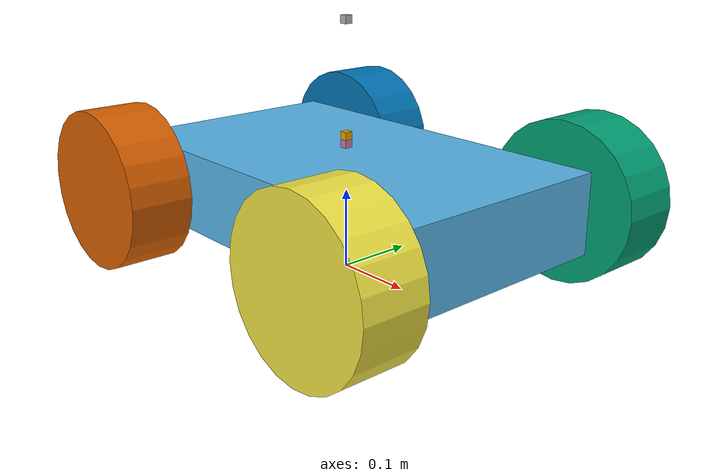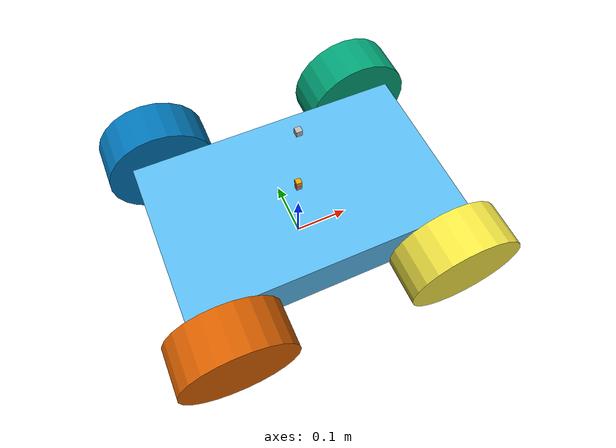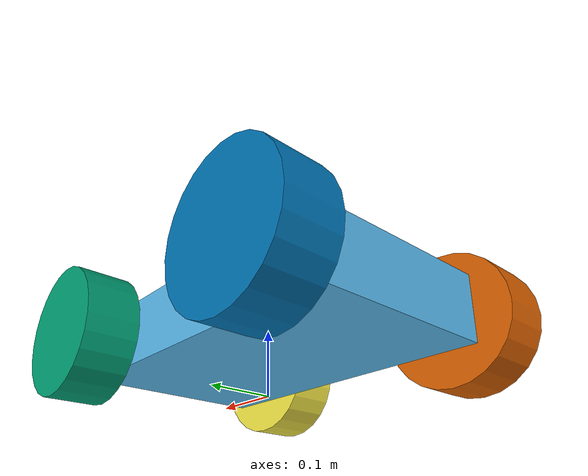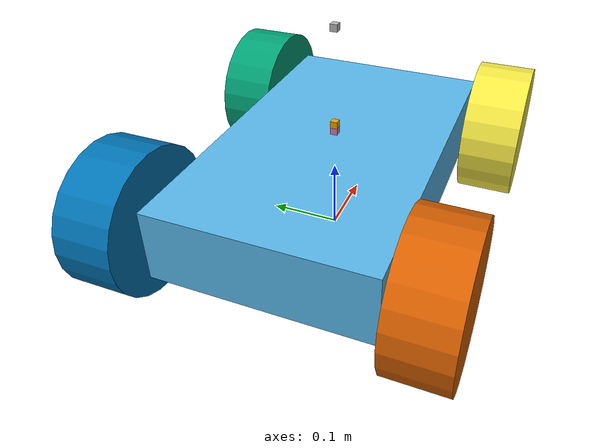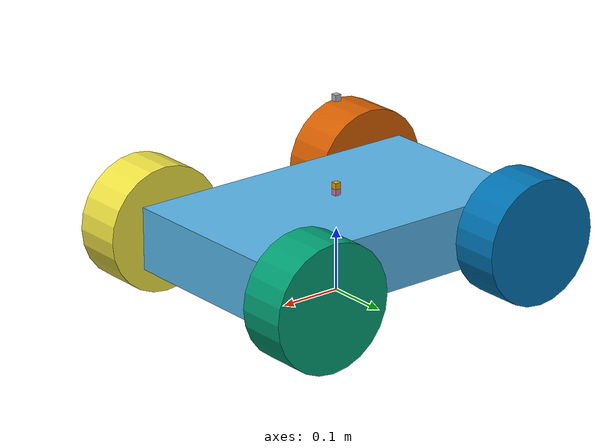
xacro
<?xml version="1.0"?>
<robot name="skid_steer" xmlns:xacro="http://www.ros.org/wiki/xacro">

  <xacro:property name="pi" value="3.14"/>

  <xacro:property name="chassis_length" value="0.5"/>
  <xacro:property name="chassis_width" value="0.3"/>
  <xacro:property name="chassis_height" value="0.1"/>

  <xacro:property name="wheel_radius" value="0.1"/>
  <xacro:property name="wheel_width" value="0.08"/>
  <xacro:property name="wheel_roll_angle" value="${pi/2}"/>

  <!--This link it is just to avoid a warning-->
  <link name="dummy_link"/>

  <!-- Base Link (Chassi) -->
  <link name="base_link">
    <visual>
      <origin xyz="0 0 0.1" rpy="0 0 0"/>
      <geometry>
        <box size="${chassis_length} ${chassis_width} ${chassis_height}"/>
      </geometry>
    </visual>

    <collision>
      <origin xyz="0 0 0.1" rpy="0 0 0"/>
      <geometry>
        <box size="${chassis_length} ${chassis_width} ${chassis_height}"/>
      </geometry>
    </collision>

    <inertial>
      <origin xyz="0 0 0.1" rpy="0 0 0"/>
      <mass value="5.0"/>
      <inertia ixx="0.083" ixy="0" ixz="0" iyy="0.083" iyz="0" izz="0.083"/>
    </inertial>
  </link>

  <!--This joint it is just to avoid a warning-->
  <joint name="fixed_joint" type="fixed">
    <parent link="dummy_link"/>
    <child link="base_link"/>
    <origin xyz="0 0 0" rpy="0 0 0"/>
  </joint>

  <link name="front_left_wheel">
    <visual>
      <origin xyz="0 0 0" rpy="${wheel_roll_angle} 0 0"/>
      <geometry>
        <cylinder radius="${wheel_radius}" length="${wheel_width}"/>
      </geometry>
    </visual>

    <collision>
      <origin xyz="0 0 0" rpy="${wheel_roll_angle} 0 0"/>
      <geometry>
        <cylinder radius="${wheel_radius}" length="${wheel_width}"/>
      </geometry>
      <friction>
        <ode>
          <mu>10.0</mu>
          <mu2>10.0</mu2>
          <slip1>0.0</slip1>
          <slip2>0.0</slip2>
        </ode>
      </friction>
    </collision>

    <inertial>
      <origin xyz="0 0 0" rpy="${wheel_roll_angle} 0 0"/>
      <mass value="1.0"/>
      <inertia ixx="0.001" ixy="0" ixz="0" iyy="0.001" iyz="0" izz="0.001"/>
    </inertial>
  </link>

  <link name="front_right_wheel">
    <visual>
      <origin xyz="0 0 0" rpy="${wheel_roll_angle} 0 0"/>
      <geometry>
        <cylinder radius="${wheel_radius}" length="${wheel_width}"/>
      </geometry>
    </visual>

    <collision>
      <origin xyz="0 0 0" rpy="${wheel_roll_angle} 0 0"/>
      <geometry>
        <cylinder radius="${wheel_radius}" length="${wheel_width}"/>
      </geometry>
      <friction>
        <ode>
          <mu>10.0</mu>
          <mu2>10.0</mu2>
          <slip1>0.0</slip1>
          <slip2>0.0</slip2>
        </ode>
      </friction>
    </collision>

    <inertial>
      <origin xyz="0 0 0" rpy="${wheel_roll_angle} 0 0"/>
      <mass value="1.0"/>
      <inertia ixx="0.001" ixy="0" ixz="0" iyy="0.001" iyz="0" izz="0.001"/>
    </inertial>
  </link>

  <link name="rear_left_wheel">
    <visual>
      <origin xyz="0 0 0" rpy="${wheel_roll_angle} 0 0"/>
      <geometry>
        <cylinder radius="${wheel_radius}" length="${wheel_width}"/>
      </geometry>
    </visual>

    <collision>
      <origin xyz="0 0 0" rpy="${wheel_roll_angle} 0 0"/>
      <geometry>
        <cylinder radius="${wheel_radius}" length="${wheel_width}"/>
      </geometry>
      <friction>
        <ode>
          <mu>10.0</mu>
          <mu2>10.0</mu2>
          <slip1>0.0</slip1>
          <slip2>0.0</slip2>
        </ode>
      </friction>
    </collision>

    <inertial>
      <origin xyz="0 0 0" rpy="${wheel_roll_angle} 0 0"/>
      <mass value="1.0"/>
      <inertia ixx="0.001" ixy="0" ixz="0" iyy="0.001" iyz="0" izz="0.001"/>
    </inertial>
  </link>

  <link name="rear_right_wheel">
    <visual>
      <origin xyz="0 0 0" rpy="${wheel_roll_angle} 0 0"/>
      <geometry>
        <cylinder radius="${wheel_radius}" length="${wheel_width}"/>
      </geometry>
    </visual>

    <collision>
      <origin xyz="0 0 0" rpy="${wheel_roll_angle} 0 0"/>
      <geometry>
        <cylinder radius="${wheel_radius}" length="${wheel_width}"/>
      </geometry>
      <friction>
        <ode>
          <mu>10.0</mu>
          <mu2>10.0</mu2>
          <slip1>0.0</slip1>
          <slip2>0.0</slip2>
        </ode>
      </friction>
    </collision>

    <inertial>
      <origin xyz="0 0 0" rpy="${wheel_roll_angle} 0 0"/>
      <mass value="1.0"/>
      <inertia ixx="0.001" ixy="0" ixz="0" iyy="0.001" iyz="0" izz="0.001"/>
    </inertial>
  </link>

  <joint name="front_left_wheel_joint" type="continuous">
    <parent link="base_link"/>
    <child link="front_left_wheel"/>
    <origin xyz="0.2 0.2 0.1" rpy="0 0 0"/>
    <axis xyz="0 1 0" rpy="0 0 0"/>
    <limit effort="100" velocity="100"/>
    <joint_properties damping="1.0" friction="1.0"/>
  </joint>

  <joint name="front_right_wheel_joint" type="continuous">
    <parent link="base_link"/>
    <child link="front_right_wheel"/>
    <origin xyz="0.2 -0.2 0.1" rpy="0 0 0"/>
    <axis xyz="0 1 0" rpy="0 0 0"/>
    <limit effort="100" velocity="100"/>
    <joint_properties damping="1.0" friction="1.0"/>
  </joint>

  <joint name="rear_left_wheel_joint" type="continuous">
    <parent link="base_link"/>
    <child link="rear_left_wheel"/>
    <origin xyz="-0.2 0.2 0.1" rpy="0 0 0"/>
    <axis xyz="0 1 0" rpy="0 0 0"/>
    <limit effort="100" velocity="100"/>
    <joint_properties damping="1.0" friction="1.0"/>
  </joint>

  <joint name="rear_right_wheel_joint" type="continuous">
    <parent link="base_link"/>
    <child link="rear_right_wheel"/>
    <origin xyz="-0.2 -0.2 0.1" rpy="0 0 0"/>
    <axis xyz="0 1 0" rpy="0 0 0"/>
    <limit effort="100" velocity="100"/>
    <joint_properties damping="1.0" friction="1.0"/>
  </joint>

  <!-- IMU Sensor -->
  <link name="imu_link">
      <inertial>
          <origin xyz="0 0 0" />
          <mass value="0.01" />
          <inertia ixx="0.0001" ixy="0" ixz="0" iyy="0.0001" iyz="0" izz="0.0001" />
      </inertial>

      <visual>
          <origin xyz="0 0 0" />
          <geometry>
              <box size="0.01 0.01 0.01" />
          </geometry>
      </visual>
  </link>

  <joint name="imu_joint" type="fixed">
      <parent link="base_link" />
      <child link="imu_link" />
      <origin xyz="0 0 0.16" rpy="0 0 0" />
  </joint>

  <gazebo>
    <plugin name="imu_controller" filename="libhector_gazebo_ros_imu.so">
      <robotNamespace>/</robotNamespace>
      <updateRate>50.0</updateRate>
      <bodyName>base_link</bodyName>
      <topicName>imu/data</topicName>
      <accelDrift>0.005 0.005 0.005</accelDrift>
      <accelGaussianNoise>0.005 0.005 0.005</accelGaussianNoise>
      <rateDrift>0.005 0.005 0.005 </rateDrift>
      <rateGaussianNoise>0.005 0.005 0.005 </rateGaussianNoise>
      <headingDrift>0.005</headingDrift>
      <headingGaussianNoise>0.005</headingGaussianNoise>
    </plugin>
  </gazebo>

  <!--Sensor LiDAR 3D -->
  <link name="lidar_link">
    <inertial>
        <origin xyz="0 0 0" />
        <mass value="0.01" />
        <inertia ixx="0.0001" ixy="0" ixz="0" iyy="0.0001" iyz="0" izz="0.0001" />
    </inertial>

    <visual>
        <origin xyz="0 0 0" />
        <geometry>
            <box size="0.01 0.01 0.01" />
        </geometry>
    </visual>
  </link>

  <joint name="lidar_joint" type="fixed">
      <parent link="base_link" />
      <child link="lidar_link" />
      <origin xyz="0 0 0.31" rpy="0 0 0" />
  </joint>

  <gazebo reference="lidar_link">
    <sensor type="ray" name="laser_livox">
      <pose>0 0 0.0 0 0 0</pose>
      <visualize>false</visualize>
      <always_on>True</always_on>
      <update_rate>10</update_rate>
      <!-- This ray plgin is only for visualization. -->
      <plugin name="gazebo_ros_laser_controller" filename="liblivox_laser_simulation.so">
      <ray>
      <scan>
        <horizontal>
          <samples>100</samples>
          <resolution>1</resolution>
          <min_angle>-3.1415926535897931</min_angle>
          <max_angle>3.1415926535897931</max_angle>
        </horizontal>
        <vertical>
          <samples>50</samples>
          <resolution>1</resolution>
          <min_angle>-3.1415926535897931</min_angle>
          <max_angle>3.1415926535897931</max_angle>
        </vertical>
      </scan>
      <range>
        <min>0.1</min>
        <max>40</max>
        <resolution>1</resolution>
      </range>
      <noise>
        <type>gaussian</type>
        <mean>0.0</mean>
        <stddev>0.0</stddev>
      </noise>
      </ray>
        <visualize>True</visualize>
        <samples>20000</samples>
        <downsample>1</downsample>
        <csv_file_name>mid360-real-centr.csv</csv_file_name>
        <publish_pointcloud_type>2</publish_pointcloud_type>
        <ros_topic>/livox/lidar</ros_topic>
        <frameName>base_link</frameName>
      </plugin>
    </sensor>
  </gazebo>

  <!-- GPS Sensor -->
  <link name="gps_link">
    <inertial>
        <origin xyz="0 0 0" />
        <mass value="0.01" />
        <inertia ixx="0.0001" ixy="0" ixz="0" iyy="0.0001" iyz="0" izz="0.0001" />
    </inertial>

    <visual>
        <origin xyz="0 0 0" />
        <geometry>
            <box size="0.01 0.01 0.01" />
        </geometry>
    </visual>
  </link>

  <joint name="gps_joint" type="fixed">
      <parent link="base_link" />
      <child link="gps_link" />
      <origin xyz="0 0 0.17" rpy="0 0 0" />
  </joint>

  <gazebo>
    <plugin name="gps" filename="libhector_gazebo_ros_gps.so">
      <alwaysOn>1</alwaysOn>
      <updateRate>10.0</updateRate>
      <bodyName>dummy_link</bodyName>
      <topicName>fix</topicName>
      <velocityTopicName>fix_velocity</velocityTopicName>
      <drift>5.0 5.0 5.0</drift>
      <gaussianNoise>0.1 0.1 0.1</gaussianNoise>
      <velocityDrift>0 0 0</velocityDrift>
      <velocityGaussianNoise>0.1 0.1 0.1</velocityGaussianNoise>
    </plugin>
   </gazebo>

  <!-- Plugin de controle de drive diferencial (skid-steer) -->
  <gazebo>
    <plugin name="skid_steer_controller" filename="libgazebo_ros_skid_steer_drive.so">
      <updateRate>100.0</updateRate>
      <robotNamespace>/</robotNamespace>
      <leftFrontJoint>front_left_wheel_joint</leftFrontJoint>
      <rightFrontJoint>front_right_wheel_joint</rightFrontJoint>
      <leftRearJoint>rear_left_wheel_joint</leftRearJoint>
      <rightRearJoint>rear_right_wheel_joint</rightRearJoint>
      <wheelSeparation>0.3</wheelSeparation>
      <wheelDiameter>0.2</wheelDiameter>
      <torque>100</torque>
      <broadcastTF>1</broadcastTF>
      <odometryFrame>map</odometryFrame>
      <commandTopic>cmd_vel</commandTopic>
      <odometryTopic>odom</odometryTopic>
      <robotBaseFrame>base_footprint</robotBaseFrame>
      <covariance_x>0.0001</covariance_x>
      <covariance_y>0.0001</covariance_y>
      <covariance_z>0.0001</covariance_z>
      <covariance_yaw>0.0001</covariance_yaw>
    </plugin>
  </gazebo>

  <!-- Ground truth -->
    <gazebo>
        <plugin name="gazebo_ros_p3d" filename="libgazebo_ros_p3d.so">
            <alwaysOn>true</alwaysOn>
            <updateRate>20.0</updateRate>
            <bodyName>base_link</bodyName>
            <topicName>ground_truth</topicName>
            <robotNamespace>/</robotNamespace>
        </plugin>
    </gazebo>

</robot>
